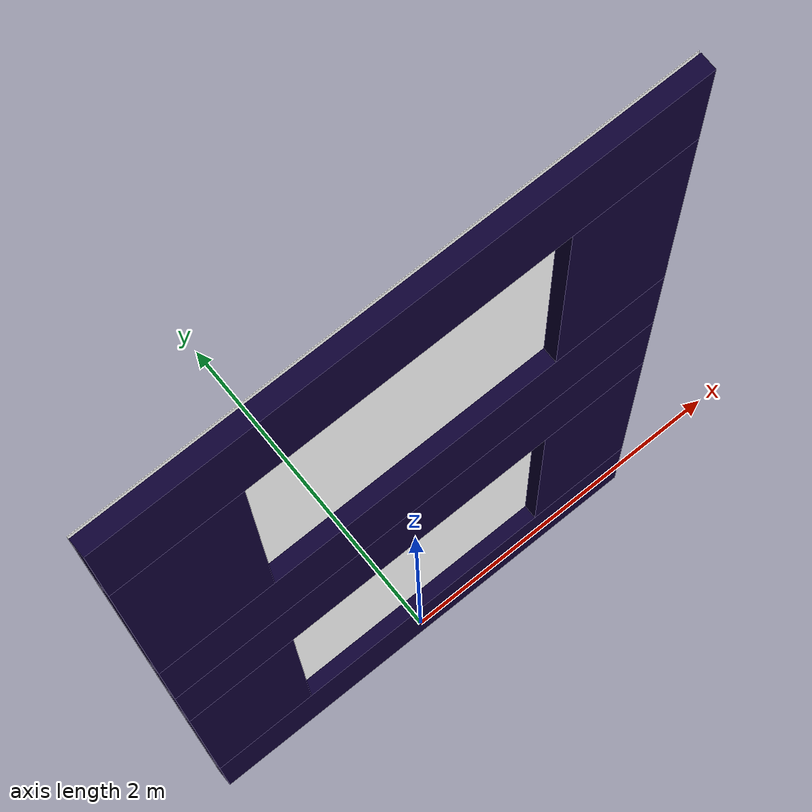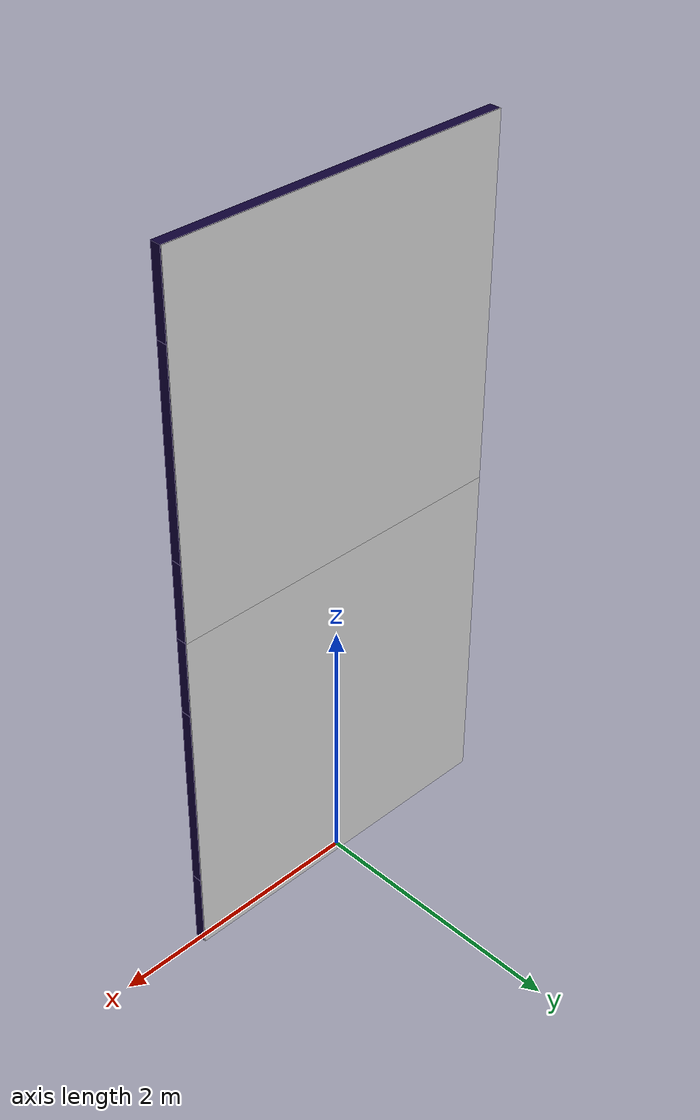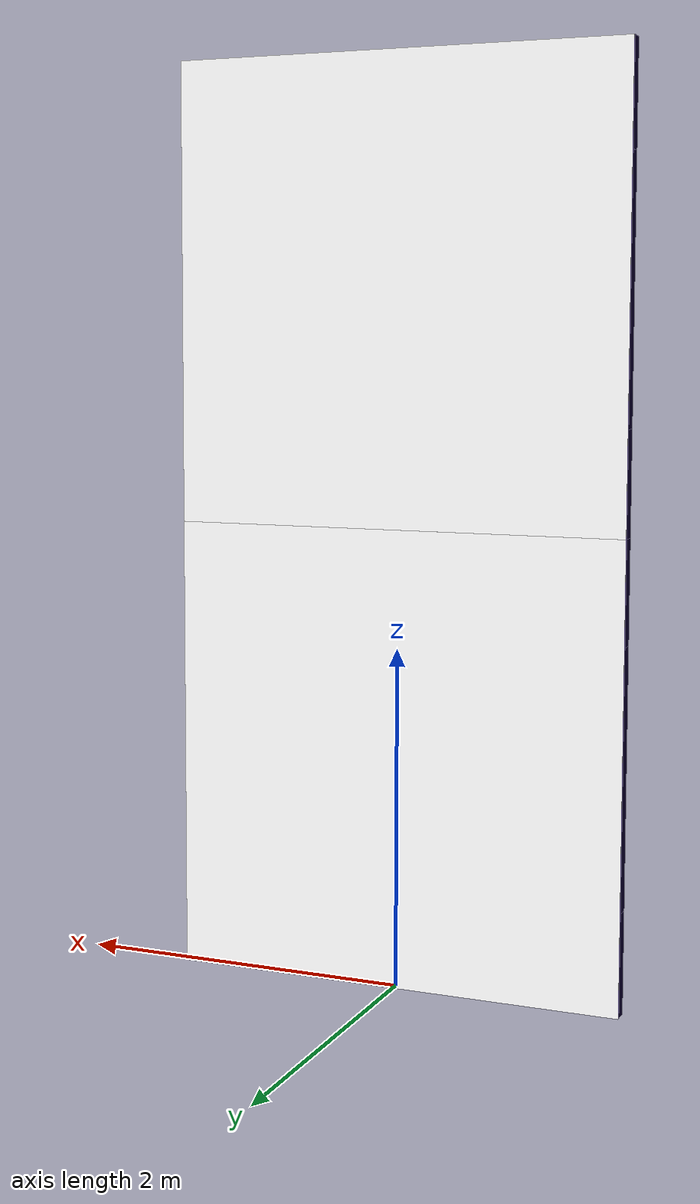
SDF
<?xml version="1.0" ?>
<sdf version="1.9">
  <model name="gate">
    <static>true</static>
    <!-- Definición del primer panel lateral -->
    <link name="side_panel_left_bottom">
      <pose>1.05 0 1.35 0 0 0</pose>
      <collision name="collision">
        <geometry>
          <box>
            <size>0.6 0.08 1.5</size>
          </box>
        </geometry>
      </collision>
      <visual name="visual">
        <geometry>
          <box>
            <size>0.6 0.08 1.5</size>
          </box>
        </geometry>
        <material>
          <ambient>0.05 0 0.2 1</ambient>
          <diffuse>0.05 0 0.2 1</diffuse>

        </material>
      </visual>
    </link>
    <!-- Definición del segundo panel lateral -->
    <link name="side_panel_right_bottom">
      <pose>-1.05 0 1.35 0 0 0</pose>
      <collision name="collision">
        <geometry>
          <box>
            <size>0.6 0.08 1.5</size>
          </box>
        </geometry>
      </collision>
      <visual name="visual">
        <geometry>
          <box>
            <size>0.6 0.08 1.5</size>
          </box>
        </geometry>
        <material>
          <ambient>0.05 0 0.2 1</ambient>
          <diffuse>0.05 0 0.2 1</diffuse>
        </material>
      </visual>
    </link>
    <!-- Definición de la barra superior -->
    <link name="top_bar_bottom">
      <pose>0 0 2.4 0 0 0</pose>
      <collision name="collision">
        <geometry>
          <box>
            <size>2.7 0.08 0.6</size>
          </box>
        </geometry>
      </collision>
      <visual name="visual">
        <geometry>
          <box>
            <size>2.7 0.08 0.6</size>
          </box>
        </geometry>
        <material>
          <ambient>0.05 0 0.2 1</ambient>
          <diffuse>0.05 0 0.2 1</diffuse>
        </material>
      </visual>
    </link>
    <!-- Definición de la barra inferior -->
    <link name="bottom_bar_bottom">
      <pose>0 0 0.3 0 0 0</pose>
      <collision name="collision">
        <geometry>
          <box>
            <size>2.7 0.08 0.6</size>
          </box>
        </geometry>
      </collision>
      <visual name="visual">
        <geometry>
          <box>
            <size>2.7 0.08 0.6</size>
          </box>
        </geometry>
        <material>
          <ambient>0.05 0 0.2 1</ambient>
          <diffuse>0.05 0 0.2 1</diffuse>
        </material>
      </visual>
    </link>
    <link name="gate_banner_bottom">
      <!-- Ajusta pose para que "tapice" el frente del gate -->
      <pose>0 0.05 1.35 1.5708 0 3.1416 </pose>
      <visual name="banner_visual">
        <cast_shadows>false</cast_shadows>
        <geometry>
          <plane>
            <normal>0 0 1</normal>
            <size>2.7 2.7</size> <!-- Ajustar a tu gusto -->
          </plane>
        </geometry>
        <material>
          <ambient>1 1 1 1</ambient>
          <diffuse>1 1 1 1</diffuse>
          <pbr>
            <metal>
              <albedo_map>textures/Gate_design.png</albedo_map>
              <roughness>0.6</roughness>
              <metalness>0</metalness>
            </metal>
          </pbr>
        </material>
      </visual>
      <!-- Sin collision para que sea "solo visual" -->
    </link>
    <link name="side_panel_left_top">
      <pose>1.05 0 4.05 0 0 0</pose>
      <collision name="collision">
        <geometry>
          <box>
            <size>0.6 0.08 1.5</size>
          </box>
        </geometry>
      </collision>
      <visual name="visual">
        <geometry>
          <box>
            <size>0.6 0.08 1.5</size>
          </box>
        </geometry>
        <material>
          <ambient>0.05 0 0.2 1</ambient>
          <diffuse>0.05 0 0.2 1</diffuse>

        </material>
      </visual>
    </link>
    <!-- Definición del segundo panel lateral -->
    <link name="side_panel_right_top">
      <pose>-1.05 0 4.05 0 0 0</pose>
      <collision name="collision">
        <geometry>
          <box>
            <size>0.6 0.08 1.5</size>
          </box>
        </geometry>
      </collision>
      <visual name="visual">
        <geometry>
          <box>
            <size>0.6 0.08 1.5</size>
          </box>
        </geometry>
        <material>
          <ambient>0.05 0 0.2 1</ambient>
          <diffuse>0.05 0 0.2 1</diffuse>
        </material>
      </visual>
    </link>
    <!-- Definición de la barra superior -->
    <link name="top_bar_top">
      <pose>0 0 5.1 0 0 0</pose>
      <collision name="collision">
        <geometry>
          <box>
            <size>2.7 0.08 0.6</size>
          </box>
        </geometry>
      </collision>
      <visual name="visual">
        <geometry>
          <box>
            <size>2.7 0.08 0.6</size>
          </box>
        </geometry>
        <material>
          <ambient>0.05 0 0.2 1</ambient>
          <diffuse>0.05 0 0.2 1</diffuse>
        </material>
      </visual>
    </link>
    <!-- Definición de la barra inferior -->
    <link name="bottom_bar_top">
      <pose>0 0 3 0 0 0</pose>
      <collision name="collision">
        <geometry>
          <box>
            <size>2.7 0.08 0.6</size>
          </box>
        </geometry>
      </collision>
      <visual name="visual">
        <geometry>
          <box>
            <size>2.7 0.08 0.6</size>
          </box>
        </geometry>
        <material>
          <ambient>0.05 0 0.2 1</ambient>
          <diffuse>0.05 0 0.2 1</diffuse>
        </material>
      </visual>
    </link>
    <link name="gate_banner_top">
      <!-- Ajusta pose para que "tapice" el frente del gate -->
      <pose>0 0.05 4.05 1.5708 0 3.1416 </pose>
      <visual name="banner_visual">
        <cast_shadows>false</cast_shadows>
        <geometry>
          <plane>
            <normal>0 0 1</normal>
            <size>2.7 2.7</size> <!-- Ajustar a tu gusto -->
          </plane>
        </geometry>
        <material>
          <ambient>1 1 1 1</ambient>
          <diffuse>1 1 1 1</diffuse>
          <pbr>
            <metal>
              <albedo_map>textures/Gate_design.png</albedo_map>
              <roughness>0.6</roughness>
              <metalness>0</metalness>
            </metal>
          </pbr>
        </material>
      </visual>
      <!-- Sin collision para que sea "solo visual" -->
    </link>
  </model>
</sdf>
